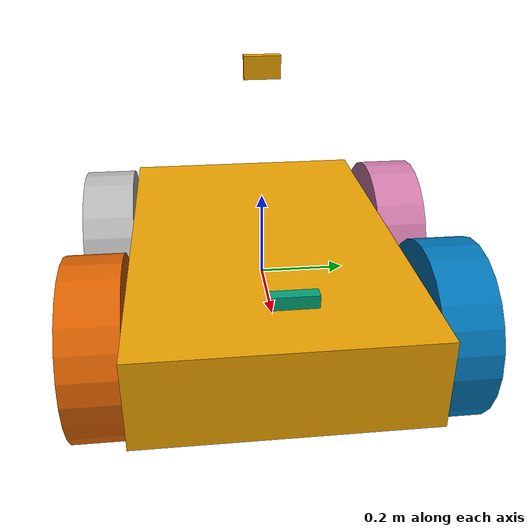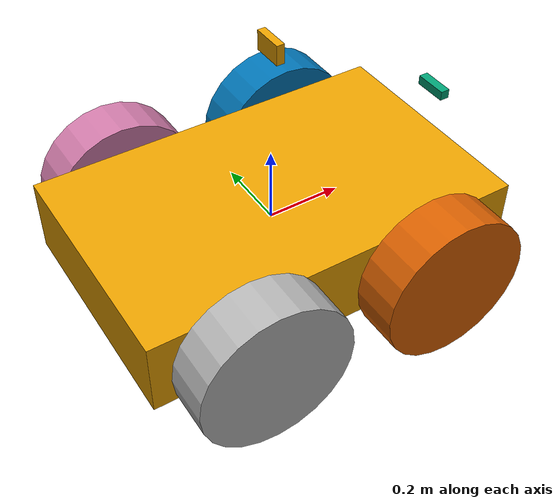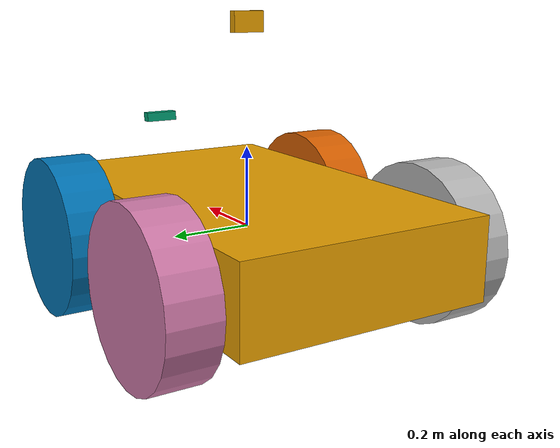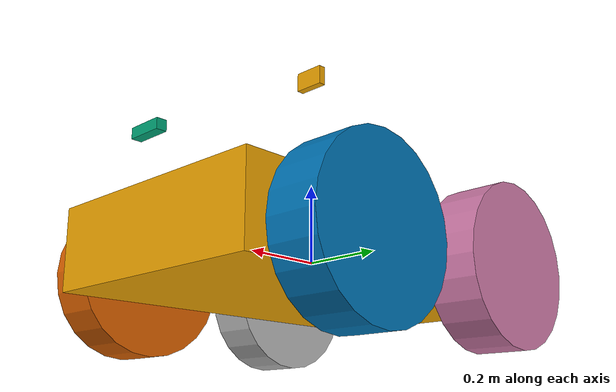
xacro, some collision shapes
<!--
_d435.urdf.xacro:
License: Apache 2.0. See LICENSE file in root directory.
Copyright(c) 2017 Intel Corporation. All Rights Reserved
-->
<?xml version="1.0" ?>
<robot name="rover" xmlns:xacro="http://ros.org/wiki/xacro">

  <xacro:include filename="$(find rover_description)/urdf/camera.urdf.xacro"/>
  <xacro:include filename="$(find rover_description)/urdf/stereo_camera.urdf.xacro"/>
  <xacro:include filename="$(find rover_description)/urdf/realsense_d435.urdf.xacro" />

  <xacro:arg name="robot_namespace" default="/" />

  <!-- TODO: adjust geometry-->
  <!-- Base size -->
  <xacro:property name="base_x_size" value="1" />
  <xacro:property name="base_y_size" value="0.625" />
  <xacro:property name="base_z_size" value="0.2" />

  <!-- Wheel mounting positions -->
  <xacro:property name="wheelbase" value="0.5" />
  <xacro:property name="track" value="${base_y_size}" />
  <xacro:property name="wheel_vertical_offset" value="-0.03" />

  <!-- Wheel properties -->
  <xacro:property name="wheel_length" value="0.125" />
  <xacro:property name="wheel_radius" value="0.2" />

  <!-- Base link -->
  <link name='base_link'>
    <visual>
      <origin xyz="0 0 0" rpy="0 0 0" />
      <geometry>
        <box size="${base_x_size} ${base_y_size} ${base_z_size}" />
      </geometry>
    </visual>
    <collision>
      <origin xyz="0 0 0" rpy="0 0 0" />
      <geometry>
        <box size="${base_x_size} ${base_y_size} ${base_z_size}" />
      </geometry>
    </collision>
  </link>

  <!-- Base footprint is on the ground under the robot -->
  <link name="base_footprint" />

  <joint name="base_footprint_joint" type="fixed" >
    <origin xyz="0 0 ${wheel_vertical_offset - wheel_radius}" rpy="0 0 0" />
    <parent link="base_link" />
    <child link="base_footprint" />
  </joint>

  <!-- Interial link stores the robot's inertial information -->
  <link name="inertial_link">
    <inertial>
      <mass value="20" />  <!-- TODO: adjust to our values-->
      <origin xyz="0 0 0" />
      <inertia ixx="0.5" ixy="0" ixz="0" iyy="1" iyz="0" izz="2" />
    </inertial>
  </link>

  <joint name="inertial_joint" type="fixed">
    <origin xyz="0 0 0" rpy="0 0 0" />
    <parent link="base_link" />
    <child link="inertial_link" />
  </joint>

  <!-- IMU link -->
  <link name="imu_link"/>

  <joint name="imu_joint" type="fixed">
    <origin xyz="0 0 0" rpy="0 0 0" />  <!-- TODO: adjust values -->
    <parent link="base_link" />
    <child link="imu_link" />
  </joint>
  <gazebo reference="imu_link">
  </gazebo>

  <!-- Wheel macro -->
  <xacro:macro name="wheel" params="wheel_prefix *joint_pose" >
    <link name="${wheel_prefix}_wheel_link" >
      <inertial>#
        <mass value="2" />
				<origin xyz="0 0 0" />
				<inertia  ixx="0.02" ixy="0" ixz="0" iyy="0.04" iyz="0" izz="0.02" />
      </inertial>
      <visual>
				<origin xyz="0 0 0" rpy="${pi/2} 0 0" />
				<geometry>
					<cylinder length="${wheel_length}" radius="${wheel_radius}" />
				</geometry>
			</visual>
      <collision>
				<origin xyz="0 0 0" rpy="${pi/2} 0 0" />
				<geometry>
					<cylinder length="${wheel_length}" radius="${wheel_radius}" />
				</geometry>
			</collision>
    </link>

    <gazebo reference="${wheel_prefix}_wheel_link">
			<mu1 value="1.0"/>
			<mu2 value="1.0"/>
			<kp value="10000000.0" />
			<kd value="1.0" />
			<fdir1 value="1 0 0"/>
		</gazebo>

		<joint name="${wheel_prefix}_wheel" type="continuous">
			<parent link="base_link"/>
			<child link="${wheel_prefix}_wheel_link"/>
			<xacro:insert_block name="joint_pose"/>
			<axis xyz="0 1 0" rpy="0 0 0" />
		</joint>

    <transmission name="${wheel_prefix}_wheel_trans" type="SimpleTransmission">
			<type>transmission_interface/SimpleTransmission</type>
			<actuator name="${wheel_prefix}_wheel_motor">
				<mechanicalReduction>1</mechanicalReduction>
			</actuator>
			<joint name="${wheel_prefix}_wheel">
				<hardwareInterface>hardware_interface/VelocityJointInterface</hardwareInterface>
			</joint>
		</transmission>
  </xacro:macro>

  <!-- Calls to wheel macro -->
  <xacro:wheel wheel_prefix="front_left">
    <origin xyz="${wheelbase/2} ${track/2 + wheel_length/2} ${wheel_vertical_offset}" rpy="0 0 0" />
  </xacro:wheel>
  <xacro:wheel wheel_prefix="front_right">
    <origin xyz="${wheelbase/2} ${-track/2 - wheel_length/2} ${wheel_vertical_offset}" rpy="0 0 0" />
  </xacro:wheel>
  <xacro:wheel wheel_prefix="rear_left">
    <origin xyz="${-wheelbase/2} ${track/2  + wheel_length/2} ${wheel_vertical_offset}" rpy="0 0 0" />
  </xacro:wheel>
  <xacro:wheel wheel_prefix="rear_right">
    <origin xyz="${-wheelbase/2} ${-track/2  - wheel_length/2} ${wheel_vertical_offset}" rpy="0 0 0" />
  </xacro:wheel>

  <!-- Camera -->
  <xacro:camera_sensor name="camera1" parent="base_link" hfov="1.3962634" image_width="800" image_height="600"  >
    <origin xyz="0 0 0.5" rpy="0 0 0" />
  </xacro:camera_sensor>

  <!-- Stereo camera -->

  <!-- Intel RealSense d435 -->
  <xacro:realsense_d435_sensor name="d435" parent="base_link" >
    <origin xyz="${base_x_size/2} 0 ${base_z_size}" rpy="0 0 0" />
  </xacro:realsense_d435_sensor>

  <!-- gazebo plugins -->
  <gazebo>
    <plugin name="skid_steer_drive_controller" filename="libgazebo_ros_skid_steer_drive.so">
      <updateRate>50.0</updateRate>
      <robotNamespace></robotNamespace>
      <leftFrontJoint>front_left_wheel</leftFrontJoint>
      <rightFrontJoint>front_right_wheel</rightFrontJoint>
      <leftRearJoint>rear_left_wheel</leftRearJoint>
      <rightRearJoint>rear_right_wheel</rightRearJoint>
      <wheelSeparation>${track}</wheelSeparation>
      <wheelDiameter>${wheel_radius*2}</wheelDiameter>
      <robotBaseFrame>base_link</robotBaseFrame>
      <torque>20</torque>
      <commandTopic>watchdog/cmd_vel</commandTopic>
      <odometryTopic>odom</odometryTopic>
      <odometryFrame>odom</odometryFrame>
      <covariance_x>0.0001</covariance_x>
      <covariance_y>0.0001</covariance_y>
      <covariance_yaw>0.01</covariance_yaw>
      <broadcastTF>false</broadcastTF>
    </plugin>
  </gazebo>

  <gazebo>
    <plugin name="imu_controller" filename="libhector_gazebo_ros_imu.so">
      <robotNamespace>$(arg robot_namespace)</robotNamespace>
      <updateRate>100.0</updateRate>
      <bodyName>base_link</bodyName>
      <topicName>imu/data</topicName>
      <accelDrift>0.005 0.005 0.005</accelDrift>
      <accelGaussianNoise>0.005 0.005 0.005</accelGaussianNoise>
      <rateDrift>0.005 0.005 0.005 </rateDrift>
      <rateGaussianNoise>0.005 0.005 0.005 </rateGaussianNoise>
      <headingDrift>0.005</headingDrift>
      <headingGaussianNoise>0.005</headingGaussianNoise>
    </plugin>
  </gazebo>

  <gazebo>
    <plugin name="gps_controller" filename="libhector_gazebo_ros_gps.so">
      <robotNamespace>$(arg robot_namespace)</robotNamespace>
      <updateRate>1</updateRate>
      <bodyName>base_link</bodyName>
      <frameId>base_link</frameId>
      <topicName>/fix</topicName>
      <velocityTopicName>navsat/vel</velocityTopicName>
      <referenceLatitude>45.37833584</referenceLatitude>
      <referenceLongitude>-71.9276222</referenceLongitude>
      <referenceHeading>90</referenceHeading>
      <referenceAltitude>0</referenceAltitude>
      <drift>0.0001 0.0001 0.0001</drift>
    </plugin>
  </gazebo>

</robot>

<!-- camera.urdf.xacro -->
<robot xmlns:xacro="http://www.ros.org/wiki/xacro">

    <xacro:macro name="camera_sensor" params="name parent hfov image_width image_height *origin">
      <link name="${name}_link">
        <collision>
          <origin xyz="0 0 0" rpy="0 0 0"/>
          <geometry>
              <box size="0.02 0.08 0.05"/>
          </geometry>
        </collision>
        <visual>
          <origin xyz="0 0 0" rpy="0 0 0"/>
          <geometry>
              <box size="0.02 0.08 0.05"/>
          </geometry>
        </visual>
        <inertial>
          <mass value="0.0001" />
          <origin xyz="0 0 0" rpy="0 0 ${pi}"/>
          <inertia ixx="0.0000001" ixy="0" ixz="0" iyy="0.0000001" iyz="0" izz="0.0000001" />
        </inertial>
      </link>

      <joint name="${name}_joint" type="fixed">
        <axis xyz="0 0 1" />
          <xacro:insert_block name="origin"/>
        <parent link="${parent}"/>
        <child link="${name}_link"/>
      </joint>

      <gazebo reference="${name}_link">
        <sensor type="camera" name="${name}">
          <update_rate>30.0</update_rate>
          <camera name="${name}">
            <horizontal_fov>${hfov}</horizontal_fov>
            <image>
              <width>${image_width}</width>
              <height>${image_height}</height>
              <format>R8G8B8</format>
            </image>
            <clip>
              <near>0.02</near>
              <far>300</far>
            </clip>
            <noise>
              <type>gaussian</type>
              <mean>0.0</mean>
              <stddev>0.007</stddev>
            </noise>
          </camera>
          <plugin name="camera_controller" filename="libgazebo_ros_camera.so">
            <alwaysOn>true</alwaysOn>
            <updateRate>0.0</updateRate>
            <cameraName>$(arg robot_namespace)/${name}</cameraName>
            <imageTopicName>image_raw</imageTopicName>
            <cameraInfoTopicName>camera_info</cameraInfoTopicName>
            <frameName>${name}_link</frameName>
            <hackBaseline>0.07</hackBaseline>
            <distortionK1>0.0</distortionK1>
            <distortionK2>0.0</distortionK2>
            <distortionK3>0.0</distortionK3>
            <distortionT1>0.0</distortionT1>
            <distortionT2>0.0</distortionT2>
          </plugin>
        </sensor>
      </gazebo>

    </xacro:macro>

</robot>

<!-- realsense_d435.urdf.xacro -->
<robot xmlns:xacro="http://www.ros.org/wiki/xacro">

  <xacro:include filename="$(find rover_description)/urdf/_d435.urdf.xacro" />

  <xacro:macro name="realsense_d435_sensor" params="parent *origin name" >

    <xacro:sensor_d435 name="${name}" parent="${parent}" use_nominal_extrinsics="true">
      <xacro:insert_block name="origin"/>
    </xacro:sensor_d435>

    <gazebo reference="${name}_link">
      <sensor name="camera" type="depth">
          <update_rate>15</update_rate>
          <camera>
            <horizontal_fov>1.5</horizontal_fov>
            <image>
              <width>640</width>
              <height>480</height>
              <format>B8G8R8</format>
            </image>
            <clip>
              <near>0.05</near>
              <far>50</far>
            </clip>
          </camera>
          <plugin name="camera_plugin" filename="libgazebo_ros_openni_kinect.so">
            <baseline>0.2</baseline>
            <alwaysOn>true</alwaysOn>
            <updateRate>0.0</updateRate>
            <cameraName>${name}</cameraName>
            <imageTopicName>/${name}/color/image_raw</imageTopicName>
            <cameraInfoTopicName>/${name}/color/camera_info</cameraInfoTopicName>
            <depthImageTopicName>/${name}/depth/image_rect_raw</depthImageTopicName>
            <depthImageCameraInfoTopicName>/${name}/depth/camera_info</depthImageCameraInfoTopicName>
            <pointCloudTopicName>/${name}/depth/color/points</pointCloudTopicName>
            <frameName>${name}_depth_optical_frame</frameName>
            <pointCloudCutoff>0.4</pointCloudCutoff>
            <pointCloudCutoffMax>20.0</pointCloudCutoffMax>
            <distortionK1>0</distortionK1>
            <distortionK2>0</distortionK2>
            <distortionK3>0</distortionK3>
            <distortionT1>0</distortionT1>
            <distortionT2>0</distortionT2>
            <CxPrime>0</CxPrime>
            <Cx>0</Cx>
            <Cy>0</Cy>
            <focalLength>0</focalLength>
            <hackBaseline>0</hackBaseline>
          </plugin>
        </sensor>
      </gazebo>
  </xacro:macro>
</robot>

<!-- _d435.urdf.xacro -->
<robot name="sensor_d435" xmlns:xacro="http://ros.org/wiki/xacro">
  <!-- Includes -->
  <xacro:include filename="$(find realsense2_description)/urdf/_materials.urdf.xacro" />

  <xacro:macro name="sensor_d435" params="parent *origin name:=camera use_nominal_extrinsics:=false">
    <xacro:property name="M_PI" value="3.1415926535897931" />

    <!-- The following values are approximate, and the camera node
     publishing TF values with actual calibrated camera extrinsic values -->
    <xacro:property name="d435_cam_depth_to_infra1_offset" value="0.0"/>
    <xacro:property name="d435_cam_depth_to_infra2_offset" value="-0.050"/>
    <xacro:property name="d435_cam_depth_to_color_offset" value="0.015"/>

    <!-- The following values model the aluminum peripherial case for the
  	D435 camera, with the camera joint represented by the actual
  	peripherial camera tripod mount -->
    <xacro:property name="d435_cam_width" value="0.090"/>
    <xacro:property name="d435_cam_height" value="0.025"/>
    <xacro:property name="d435_cam_depth" value="0.02505"/>
    <xacro:property name="d435_cam_mount_from_center_offset" value="0.0149"/>

    <!-- The following offset is relative the the physical D435 camera peripherial
  	camera tripod mount -->
    <xacro:property name="d435_cam_depth_px" value="${d435_cam_mount_from_center_offset}"/>
    <xacro:property name="d435_cam_depth_py" value="0.0175"/>
    <xacro:property name="d435_cam_depth_pz" value="${d435_cam_height/2}"/>

    <!-- camera body, with origin at bottom screw mount -->
    <joint name="${name}_joint" type="fixed">
      <xacro:insert_block name="origin" />
      <parent link="${parent}"/>
      <child link="${name}_bottom_screw_frame" />
    </joint>
    <link name="${name}_bottom_screw_frame"/>

    <joint name="${name}_link_joint" type="fixed">
      <origin xyz="0 ${d435_cam_depth_py} ${d435_cam_depth_pz}" rpy="0 0 0"/>
      <parent link="${name}_bottom_screw_frame"/>
      <child link="${name}_link" />
    </joint>

    <link name="${name}_link">
      <visual>
        <origin xyz="${d435_cam_mount_from_center_offset} ${-d435_cam_depth_py} 0" rpy="${M_PI/2} 0 ${M_PI/2}"/>
        <geometry>
	        <mesh filename="package://realsense2_description/meshes/d435.dae" />
        </geometry>
      </visual>
      <collision>
        <origin xyz="0 ${-d435_cam_depth_py} 0" rpy="0 0 0"/>
        <geometry>
          <box size="${d435_cam_depth} ${d435_cam_width} ${d435_cam_height}"/>
        </geometry>
      </collision>
      <inertial>
        <!-- The following are not reliable values, and should not be used for modeling -->
        <mass value="0.564" />
        <origin xyz="0 0 0" />
        <inertia ixx="0.003881243" ixy="0.0" ixz="0.0" iyy="0.000498940" iyz="0.0" izz="0.003879257" />
      </inertial>
    </link>

    <!-- Use the nominal extrinsics between camera frames if the calibrated extrinsics aren't being published. e.g. running the device in simulation  -->
    <xacro:if value="${use_nominal_extrinsics}">
      <!-- camera depth joints and links -->
      <joint name="${name}_depth_joint" type="fixed">
        <origin xyz="0 0 0" rpy="0 0 0"/>
        <parent link="${name}_link"/>
        <child link="${name}_depth_frame" />
      </joint>
      <link name="${name}_depth_frame"/>

      <joint name="${name}_depth_optical_joint" type="fixed">
        <origin xyz="0 0 0" rpy="${-M_PI/2} 0 ${-M_PI/2}" />
        <parent link="${name}_depth_frame" />
        <child link="${name}_depth_optical_frame" />
      </joint>
      <link name="${name}_depth_optical_frame"/>

      <!-- camera left IR joints and links -->
      <joint name="${name}_infra1_joint" type="fixed">
        <origin xyz="0 ${d435_cam_depth_to_infra1_offset} 0" rpy="0 0 0" />
        <parent link="${name}_link" />
        <child link="${name}_infra1_frame" />
      </joint>
      <link name="${name}_infra1_frame"/>

      <joint name="${name}_infra1_optical_joint" type="fixed">
        <origin xyz="0 0 0" rpy="${-M_PI/2} 0 ${-M_PI/2}" />
        <parent link="${name}_infra1_frame" />
        <child link="${name}_infra1_optical_frame" />
      </joint>
      <link name="${name}_infra1_optical_frame"/>

      <!-- camera right IR joints and links -->
      <joint name="${name}_infra2_joint" type="fixed">
        <origin xyz="0 ${d435_cam_depth_to_infra2_offset} 0" rpy="0 0 0" />
        <parent link="${name}_link" />
        <child link="${name}_infra2_frame" />
      </joint>
      <link name="${name}_infra2_frame"/>

      <joint name="${name}_infra2_optical_joint" type="fixed">
        <origin xyz="0 0 0" rpy="${-M_PI/2} 0 ${-M_PI/2}" />
        <parent link="${name}_infra2_frame" />
        <child link="${name}_infra2_optical_frame" />
      </joint>
      <link name="${name}_infra2_optical_frame"/>

      <!-- camera color joints and links -->
      <joint name="${name}_color_joint" type="fixed">
        <origin xyz="0 ${d435_cam_depth_to_color_offset} 0" rpy="0 0 0" />
        <parent link="${name}_link" />
        <child link="${name}_color_frame" />
      </joint>
      <link name="${name}_color_frame"/>

      <joint name="${name}_color_optical_joint" type="fixed">
        <origin xyz="0 0 0" rpy="${-M_PI/2} 0 ${-M_PI/2}" />
        <parent link="${name}_color_frame" />
        <child link="${name}_color_optical_frame" />
      </joint>
      <link name="${name}_color_optical_frame"/>
    </xacro:if>
  </xacro:macro>
</robot>
